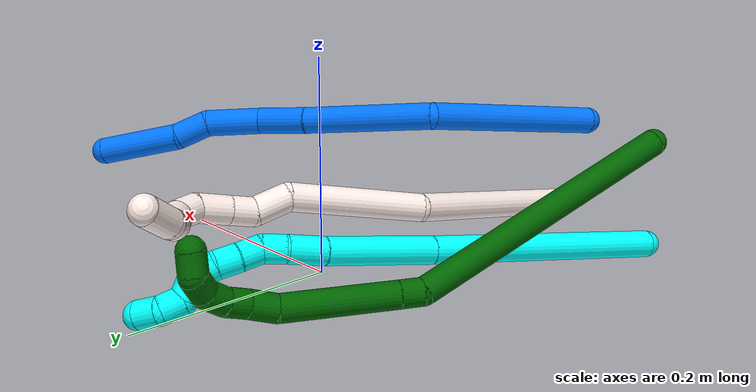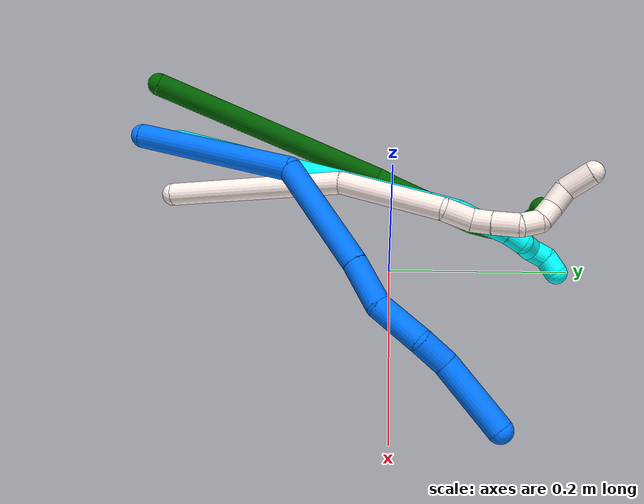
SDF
<sdf version="1.7">
 <world name="default">
  <model name="3">
   <static>0</static>
   <link name="3">
    <collision name="collision-cylinder-e_1_1_4">
     <pose>0.027121 0.092461 -0.059635 -2.14363 0.241683 -0.43848</pose>
     <geometry><cylinder><radius>0.0125</radius><length>0.226637</length></cylinder></geometry>
     <surface>
      <friction><ode><mu>1.16</mu><mu2>1.16</mu2><slip1>0</slip1><slip2>0</slip2></ode></friction>
      <contact><ode><kp>1e+06</kp><kd>1</kd><max_vel>0</max_vel><min_depth>0.001</min_depth></ode></contact>
     </surface>
    </collision>
    <visual name="visual-cylinder-e_1_1_4">
     <pose>0.027121 0.092461 -0.059635 -2.14363 0.241683 -0.43848</pose>
     <geometry><cylinder><radius>0.0125</radius><length>0.226637</length></cylinder></geometry>
     <material><ambient>0.003922 1 0.996078 1</ambient></material>
    </visual>
    <collision name="collision-cylinder-e_2_4_5">
     <pose>0.066819 0.225521 -0.144763 -2.13149 0.25657 -0.458422</pose>
     <geometry><cylinder><radius>0.0125</radius><length>0.099121</length></cylinder></geometry>
     <surface>
      <friction><ode><mu>1.16</mu><mu2>1.16</mu2><slip1>0</slip1><slip2>0</slip2></ode></friction>
      <contact><ode><kp>1e+06</kp><kd>1</kd><max_vel>0</max_vel><min_depth>0.001</min_depth></ode></contact>
     </surface>
    </collision>
    <visual name="visual-cylinder-e_2_4_5">
     <pose>0.066819 0.225521 -0.144763 -2.13149 0.25657 -0.458422</pose>
     <geometry><cylinder><radius>0.0125</radius><length>0.099121</length></cylinder></geometry>
     <material><ambient>0.003922 1 0.996078 1</ambient></material>
    </visual>
    <collision name="collision-cylinder-e_3_5_6">
     <pose>0.084578 0.27975 -0.178401 -2.10943 0.315432 -0.546584</pose>
     <geometry><cylinder><radius>0.0125</radius><length>0.033407</length></cylinder></geometry>
     <surface>
      <friction><ode><mu>1.16</mu><mu2>1.16</mu2><slip1>0</slip1><slip2>0</slip2></ode></friction>
      <contact><ode><kp>1e+06</kp><kd>1</kd><max_vel>0</max_vel><min_depth>0.001</min_depth></ode></contact>
     </surface>
    </collision>
    <visual name="visual-cylinder-e_3_5_6">
     <pose>0.084578 0.27975 -0.178401 -2.10943 0.315432 -0.546584</pose>
     <geometry><cylinder><radius>0.0125</radius><length>0.033407</length></cylinder></geometry>
     <material><ambient>0.003922 1 0.996078 1</ambient></material>
    </visual>
    <collision name="collision-cylinder-e_4_6_7">
     <pose>0.094262 0.300587 -0.192546 -2.2651 0.447669 -0.90439</pose>
     <geometry><cylinder><radius>0.0125</radius><length>0.020802</length></cylinder></geometry>
     <surface>
      <friction><ode><mu>1.16</mu><mu2>1.16</mu2><slip1>0</slip1><slip2>0</slip2></ode></friction>
      <contact><ode><kp>1e+06</kp><kd>1</kd><max_vel>0</max_vel><min_depth>0.001</min_depth></ode></contact>
     </surface>
    </collision>
    <visual name="visual-cylinder-e_4_6_7">
     <pose>0.094262 0.300587 -0.192546 -2.2651 0.447669 -0.90439</pose>
     <geometry><cylinder><radius>0.0125</radius><length>0.020802</length></cylinder></geometry>
     <material><ambient>0.003922 1 0.996078 1</ambient></material>
    </visual>
    <collision name="collision-cylinder-e_5_7_8">
     <pose>0.099321 0.314411 -0.206028 -2.41741 0.055673 -0.146751</pose>
     <geometry><cylinder><radius>0.0125</radius><length>0.020012</length></cylinder></geometry>
     <surface>
      <friction><ode><mu>1.16</mu><mu2>1.16</mu2><slip1>0</slip1><slip2>0</slip2></ode></friction>
      <contact><ode><kp>1e+06</kp><kd>1</kd><max_vel>0</max_vel><min_depth>0.001</min_depth></ode></contact>
     </surface>
    </collision>
    <visual name="visual-cylinder-e_5_7_8">
     <pose>0.099321 0.314411 -0.206028 -2.41741 0.055673 -0.146751</pose>
     <geometry><cylinder><radius>0.0125</radius><length>0.020012</length></cylinder></geometry>
     <material><ambient>0.003922 1 0.996078 1</ambient></material>
    </visual>
    <collision name="collision-cylinder-e_6_8_9">
     <pose>0.101226 0.327421 -0.22109 -2.44094 0.135225 -0.366485</pose>
     <geometry><cylinder><radius>0.0125</radius><length>0.020011</length></cylinder></geometry>
     <surface>
      <friction><ode><mu>1.16</mu><mu2>1.16</mu2><slip1>0</slip1><slip2>0</slip2></ode></friction>
      <contact><ode><kp>1e+06</kp><kd>1</kd><max_vel>0</max_vel><min_depth>0.001</min_depth></ode></contact>
     </surface>
    </collision>
    <visual name="visual-cylinder-e_6_8_9">
     <pose>0.101226 0.327421 -0.22109 -2.44094 0.135225 -0.366485</pose>
     <geometry><cylinder><radius>0.0125</radius><length>0.020011</length></cylinder></geometry>
     <material><ambient>0.003922 1 0.996078 1</ambient></material>
    </visual>
    <collision name="collision-cylinder-e_7_9_10">
     <pose>0.103558 0.338393 -0.237505 -2.66345 0.098452 -0.39889</pose>
     <geometry><cylinder><radius>0.0125</radius><length>0.020002</length></cylinder></geometry>
     <surface>
      <friction><ode><mu>1.16</mu><mu2>1.16</mu2><slip1>0</slip1><slip2>0</slip2></ode></friction>
      <contact><ode><kp>1e+06</kp><kd>1</kd><max_vel>0</max_vel><min_depth>0.001</min_depth></ode></contact>
     </surface>
    </collision>
    <visual name="visual-cylinder-e_7_9_10">
     <pose>0.103558 0.338393 -0.237505 -2.66345 0.098452 -0.39889</pose>
     <geometry><cylinder><radius>0.0125</radius><length>0.020002</length></cylinder></geometry>
     <material><ambient>0.003922 1 0.996078 1</ambient></material>
    </visual>
    <collision name="collision-cylinder-e_8_10_11">
     <pose>0.100326 0.343352 -0.255403 -3.09973 -0.435082 2.95272</pose>
     <geometry><cylinder><radius>0.0125</radius><length>0.020003</length></cylinder></geometry>
     <surface>
      <friction><ode><mu>1.16</mu><mu2>1.16</mu2><slip1>0</slip1><slip2>0</slip2></ode></friction>
      <contact><ode><kp>1e+06</kp><kd>1</kd><max_vel>0</max_vel><min_depth>0.001</min_depth></ode></contact>
     </surface>
    </collision>
    <visual name="visual-cylinder-e_8_10_11">
     <pose>0.100326 0.343352 -0.255403 -3.09973 -0.435082 2.95272</pose>
     <geometry><cylinder><radius>0.0125</radius><length>0.020003</length></cylinder></geometry>
     <material><ambient>0.003922 1 0.996078 1</ambient></material>
    </visual>
    <collision name="collision-cylinder-e_9_11_12">
     <pose>0.097224 0.349244 -0.272734 -2.55358 0.11161 -0.364897</pose>
     <geometry><cylinder><radius>0.0125</radius><length>0.02</length></cylinder></geometry>
     <surface>
      <friction><ode><mu>1.16</mu><mu2>1.16</mu2><slip1>0</slip1><slip2>0</slip2></ode></friction>
      <contact><ode><kp>1e+06</kp><kd>1</kd><max_vel>0</max_vel><min_depth>0.001</min_depth></ode></contact>
     </surface>
    </collision>
    <visual name="visual-cylinder-e_9_11_12">
     <pose>0.097224 0.349244 -0.272734 -2.55358 0.11161 -0.364897</pose>
     <geometry><cylinder><radius>0.0125</radius><length>0.02</length></cylinder></geometry>
     <material><ambient>0.003922 1 0.996078 1</ambient></material>
    </visual>
    <collision name="collision-cylinder-e_10_12_2">
     <pose>0.103957 0.357213 -0.288905 -2.84019 0.59654 -2.22405</pose>
     <geometry><cylinder><radius>0.0125</radius><length>0.020005</length></cylinder></geometry>
     <surface>
      <friction><ode><mu>1.16</mu><mu2>1.16</mu2><slip1>0</slip1><slip2>0</slip2></ode></friction>
      <contact><ode><kp>1e+06</kp><kd>1</kd><max_vel>0</max_vel><min_depth>0.001</min_depth></ode></contact>
     </surface>
    </collision>
    <visual name="visual-cylinder-e_10_12_2">
     <pose>0.103957 0.357213 -0.288905 -2.84019 0.59654 -2.22405</pose>
     <geometry><cylinder><radius>0.0125</radius><length>0.020005</length></cylinder></geometry>
     <material><ambient>0.003922 1 0.996078 1</ambient></material>
    </visual>
    <collision name="collision-sphere-2">
     <pose>0.109576 0.35967 -0.296807 0 -0 0</pose>
     <geometry><sphere><radius>0.0125</radius></sphere></geometry>
     <surface>
      <friction><ode><mu>1.16</mu><mu2>1.16</mu2><slip1>0</slip1><slip2>0</slip2></ode></friction>
      <contact><ode><kp>1e+06</kp><kd>1</kd><max_vel>0</max_vel><min_depth>0.001</min_depth></ode></contact>
     </surface>
    </collision>
    <visual name="visual-sphere-2">
     <pose>0.109576 0.35967 -0.296807 0 -0 0</pose>
     <geometry><sphere><radius>0.0125</radius></sphere></geometry>
     <material><ambient>0.003922 1 0.996078 1</ambient></material>
    </visual>
    <collision name="collision-sphere-12">
     <pose>0.098338 0.354757 -0.281003 0 -0 0</pose>
     <geometry><sphere><radius>0.0125</radius></sphere></geometry>
     <surface>
      <friction><ode><mu>1.16</mu><mu2>1.16</mu2><slip1>0</slip1><slip2>0</slip2></ode></friction>
      <contact><ode><kp>1e+06</kp><kd>1</kd><max_vel>0</max_vel><min_depth>0.001</min_depth></ode></contact>
     </surface>
    </collision>
    <visual name="visual-sphere-12">
     <pose>0.098338 0.354757 -0.281003 0 -0 0</pose>
     <geometry><sphere><radius>0.0125</radius></sphere></geometry>
     <material><ambient>0.003922 1 0.996078 1</ambient></material>
    </visual>
    <collision name="collision-sphere-11">
     <pose>0.09611 0.343732 -0.264465 0 -0 0</pose>
     <geometry><sphere><radius>0.0125</radius></sphere></geometry>
     <surface>
      <friction><ode><mu>1.16</mu><mu2>1.16</mu2><slip1>0</slip1><slip2>0</slip2></ode></friction>
      <contact><ode><kp>1e+06</kp><kd>1</kd><max_vel>0</max_vel><min_depth>0.001</min_depth></ode></contact>
     </surface>
    </collision>
    <visual name="visual-sphere-11">
     <pose>0.09611 0.343732 -0.264465 0 -0 0</pose>
     <geometry><sphere><radius>0.0125</radius></sphere></geometry>
     <material><ambient>0.003922 1 0.996078 1</ambient></material>
    </visual>
    <collision name="collision-sphere-10">
     <pose>0.104541 0.342972 -0.246342 0 -0 0</pose>
     <geometry><sphere><radius>0.0125</radius></sphere></geometry>
     <surface>
      <friction><ode><mu>1.16</mu><mu2>1.16</mu2><slip1>0</slip1><slip2>0</slip2></ode></friction>
      <contact><ode><kp>1e+06</kp><kd>1</kd><max_vel>0</max_vel><min_depth>0.001</min_depth></ode></contact>
     </surface>
    </collision>
    <visual name="visual-sphere-10">
     <pose>0.104541 0.342972 -0.246342 0 -0 0</pose>
     <geometry><sphere><radius>0.0125</radius></sphere></geometry>
     <material><ambient>0.003922 1 0.996078 1</ambient></material>
    </visual>
    <collision name="collision-sphere-9">
     <pose>0.102575 0.333813 -0.228668 0 -0 0</pose>
     <geometry><sphere><radius>0.0125</radius></sphere></geometry>
     <surface>
      <friction><ode><mu>1.16</mu><mu2>1.16</mu2><slip1>0</slip1><slip2>0</slip2></ode></friction>
      <contact><ode><kp>1e+06</kp><kd>1</kd><max_vel>0</max_vel><min_depth>0.001</min_depth></ode></contact>
     </surface>
    </collision>
    <visual name="visual-sphere-9">
     <pose>0.102575 0.333813 -0.228668 0 -0 0</pose>
     <geometry><sphere><radius>0.0125</radius></sphere></geometry>
     <material><ambient>0.003922 1 0.996078 1</ambient></material>
    </visual>
    <collision name="collision-sphere-4">
     <pose>0.054242 0.184923 -0.119271 0 -0 0</pose>
     <geometry><sphere><radius>0.0125</radius></sphere></geometry>
     <surface>
      <friction><ode><mu>1.16</mu><mu2>1.16</mu2><slip1>0</slip1><slip2>0</slip2></ode></friction>
      <contact><ode><kp>1e+06</kp><kd>1</kd><max_vel>0</max_vel><min_depth>0.001</min_depth></ode></contact>
     </surface>
    </collision>
    <visual name="visual-sphere-4">
     <pose>0.054242 0.184923 -0.119271 0 -0 0</pose>
     <geometry><sphere><radius>0.0125</radius></sphere></geometry>
     <material><ambient>0.003922 1 0.996078 1</ambient></material>
    </visual>
    <collision name="collision-sphere-1">
     <geometry><sphere><radius>0.0125</radius></sphere></geometry>
     <surface>
      <friction><ode><mu>1.16</mu><mu2>1.16</mu2><slip1>0</slip1><slip2>0</slip2></ode></friction>
      <contact><ode><kp>1e+06</kp><kd>1</kd><max_vel>0</max_vel><min_depth>0.001</min_depth></ode></contact>
     </surface>
    </collision>
    <visual name="visual-sphere-1">
     <geometry><sphere><radius>0.0125</radius></sphere></geometry>
     <material><ambient>0.003922 1 0.996078 1</ambient></material>
    </visual>
    <collision name="collision-sphere-8">
     <pose>0.099877 0.32103 -0.213511 0 -0 0</pose>
     <geometry><sphere><radius>0.0125</radius></sphere></geometry>
     <surface>
      <friction><ode><mu>1.16</mu><mu2>1.16</mu2><slip1>0</slip1><slip2>0</slip2></ode></friction>
      <contact><ode><kp>1e+06</kp><kd>1</kd><max_vel>0</max_vel><min_depth>0.001</min_depth></ode></contact>
     </surface>
    </collision>
    <visual name="visual-sphere-8">
     <pose>0.099877 0.32103 -0.213511 0 -0 0</pose>
     <geometry><sphere><radius>0.0125</radius></sphere></geometry>
     <material><ambient>0.003922 1 0.996078 1</ambient></material>
    </visual>
    <collision name="collision-sphere-5">
     <pose>0.079396 0.266119 -0.170255 0 -0 0</pose>
     <geometry><sphere><radius>0.0125</radius></sphere></geometry>
     <surface>
      <friction><ode><mu>1.16</mu><mu2>1.16</mu2><slip1>0</slip1><slip2>0</slip2></ode></friction>
      <contact><ode><kp>1e+06</kp><kd>1</kd><max_vel>0</max_vel><min_depth>0.001</min_depth></ode></contact>
     </surface>
    </collision>
    <visual name="visual-sphere-5">
     <pose>0.079396 0.266119 -0.170255 0 -0 0</pose>
     <geometry><sphere><radius>0.0125</radius></sphere></geometry>
     <material><ambient>0.003922 1 0.996078 1</ambient></material>
    </visual>
    <collision name="collision-sphere-6">
     <pose>0.08976 0.293381 -0.186547 0 -0 0</pose>
     <geometry><sphere><radius>0.0125</radius></sphere></geometry>
     <surface>
      <friction><ode><mu>1.16</mu><mu2>1.16</mu2><slip1>0</slip1><slip2>0</slip2></ode></friction>
      <contact><ode><kp>1e+06</kp><kd>1</kd><max_vel>0</max_vel><min_depth>0.001</min_depth></ode></contact>
     </surface>
    </collision>
    <visual name="visual-sphere-6">
     <pose>0.08976 0.293381 -0.186547 0 -0 0</pose>
     <geometry><sphere><radius>0.0125</radius></sphere></geometry>
     <material><ambient>0.003922 1 0.996078 1</ambient></material>
    </visual>
    <collision name="collision-sphere-7">
     <pose>0.098764 0.307792 -0.198545 0 -0 0</pose>
     <geometry><sphere><radius>0.0125</radius></sphere></geometry>
     <surface>
      <friction><ode><mu>1.16</mu><mu2>1.16</mu2><slip1>0</slip1><slip2>0</slip2></ode></friction>
      <contact><ode><kp>1e+06</kp><kd>1</kd><max_vel>0</max_vel><min_depth>0.001</min_depth></ode></contact>
     </surface>
    </collision>
    <visual name="visual-sphere-7">
     <pose>0.098764 0.307792 -0.198545 0 -0 0</pose>
     <geometry><sphere><radius>0.0125</radius></sphere></geometry>
     <material><ambient>0.003922 1 0.996078 1</ambient></material>
    </visual>
    <inertial>
     <pose>0.059344 0.199038 -0.134942 0 -0 0</pose>
     <mass>0.5</mass>
     <inertia>
      <ixx>0.000505</ixx>
      <ixy>0</ixy>
      <ixz>0</ixz>
      <iyy>-0.00085</iyy>
      <iyz>0</iyz>
      <izz>-0.001159</izz>
     </inertia>
    </inertial>
   </link>
   <pose>-0.173647 -0.258258 0.011508 0.604984 -0.346524 -0.140121</pose>
  </model>
  <model name="6">
   <static>0</static>
   <link name="6">
    <collision name="collision-cylinder-e_1_1_4">
     <pose>0.061625 0.099304 -0.066845 -2.16326 0.475417 -0.854277</pose>
     <geometry><cylinder><radius>0.0125</radius><length>0.269275</length></cylinder></geometry>
     <surface>
      <friction><ode><mu>1.16</mu><mu2>1.16</mu2><slip1>0</slip1><slip2>0</slip2></ode></friction>
      <contact><ode><kp>1e+06</kp><kd>1</kd><max_vel>0</max_vel><min_depth>0.001</min_depth></ode></contact>
     </surface>
    </collision>
    <visual name="visual-cylinder-e_1_1_4">
     <pose>0.061625 0.099304 -0.066845 -2.16326 0.475417 -0.854277</pose>
     <geometry><cylinder><radius>0.0125</radius><length>0.269275</length></cylinder></geometry>
     <material><ambient>0 0.392157 0.003922 1</ambient></material>
    </visual>
    <collision name="collision-cylinder-e_2_4_5">
     <pose>0.124412 0.208407 -0.136911 -1.88835 0.112263 -0.154923</pose>
     <geometry><cylinder><radius>0.0125</radius><length>0.02076</length></cylinder></geometry>
     <surface>
      <friction><ode><mu>1.16</mu><mu2>1.16</mu2><slip1>0</slip1><slip2>0</slip2></ode></friction>
      <contact><ode><kp>1e+06</kp><kd>1</kd><max_vel>0</max_vel><min_depth>0.001</min_depth></ode></contact>
     </surface>
    </collision>
    <visual name="visual-cylinder-e_2_4_5">
     <pose>0.124412 0.208407 -0.136911 -1.88835 0.112263 -0.154923</pose>
     <geometry><cylinder><radius>0.0125</radius><length>0.02076</length></cylinder></geometry>
     <material><ambient>0 0.392157 0.003922 1</ambient></material>
    </visual>
    <collision name="collision-cylinder-e_3_5_6">
     <pose>0.130229 0.26613 -0.15859 -1.93843 0.090365 -0.131539</pose>
     <geometry><cylinder><radius>0.0125</radius><length>0.103131</length></cylinder></geometry>
     <surface>
      <friction><ode><mu>1.16</mu><mu2>1.16</mu2><slip1>0</slip1><slip2>0</slip2></ode></friction>
      <contact><ode><kp>1e+06</kp><kd>1</kd><max_vel>0</max_vel><min_depth>0.001</min_depth></ode></contact>
     </surface>
    </collision>
    <visual name="visual-cylinder-e_3_5_6">
     <pose>0.130229 0.26613 -0.15859 -1.93843 0.090365 -0.131539</pose>
     <geometry><cylinder><radius>0.0125</radius><length>0.103131</length></cylinder></geometry>
     <material><ambient>0 0.392157 0.003922 1</ambient></material>
    </visual>
    <collision name="collision-cylinder-e_4_6_7">
     <pose>0.132425 0.325406 -0.182297 -2.00391 -0.193923 0.30196</pose>
     <geometry><cylinder><radius>0.0125</radius><length>0.025494</length></cylinder></geometry>
     <surface>
      <friction><ode><mu>1.16</mu><mu2>1.16</mu2><slip1>0</slip1><slip2>0</slip2></ode></friction>
      <contact><ode><kp>1e+06</kp><kd>1</kd><max_vel>0</max_vel><min_depth>0.001</min_depth></ode></contact>
     </surface>
    </collision>
    <visual name="visual-cylinder-e_4_6_7">
     <pose>0.132425 0.325406 -0.182297 -2.00391 -0.193923 0.30196</pose>
     <geometry><cylinder><radius>0.0125</radius><length>0.025494</length></cylinder></geometry>
     <material><ambient>0 0.392157 0.003922 1</ambient></material>
    </visual>
    <collision name="collision-cylinder-e_5_7_8">
     <pose>0.128073 0.344513 -0.193688 -2.24072 -0.189402 0.387894</pose>
     <geometry><cylinder><radius>0.0125</radius><length>0.020142</length></cylinder></geometry>
     <surface>
      <friction><ode><mu>1.16</mu><mu2>1.16</mu2><slip1>0</slip1><slip2>0</slip2></ode></friction>
      <contact><ode><kp>1e+06</kp><kd>1</kd><max_vel>0</max_vel><min_depth>0.001</min_depth></ode></contact>
     </surface>
    </collision>
    <visual name="visual-cylinder-e_5_7_8">
     <pose>0.128073 0.344513 -0.193688 -2.24072 -0.189402 0.387894</pose>
     <geometry><cylinder><radius>0.0125</radius><length>0.020142</length></cylinder></geometry>
     <material><ambient>0 0.392157 0.003922 1</ambient></material>
    </visual>
    <collision name="collision-cylinder-e_6_8_9">
     <pose>0.121507 0.358731 -0.206496 -2.37154 -0.465949 1.0594</pose>
     <geometry><cylinder><radius>0.0125</radius><length>0.020789</length></cylinder></geometry>
     <surface>
      <friction><ode><mu>1.16</mu><mu2>1.16</mu2><slip1>0</slip1><slip2>0</slip2></ode></friction>
      <contact><ode><kp>1e+06</kp><kd>1</kd><max_vel>0</max_vel><min_depth>0.001</min_depth></ode></contact>
     </surface>
    </collision>
    <visual name="visual-cylinder-e_6_8_9">
     <pose>0.121507 0.358731 -0.206496 -2.37154 -0.465949 1.0594</pose>
     <geometry><cylinder><radius>0.0125</radius><length>0.020789</length></cylinder></geometry>
     <material><ambient>0 0.392157 0.003922 1</ambient></material>
    </visual>
    <collision name="collision-cylinder-e_7_9_10">
     <pose>0.10906 0.368233 -0.218801 -2.64745 -0.881817 2.15986</pose>
     <geometry><cylinder><radius>0.0125</radius><length>0.02015</length></cylinder></geometry>
     <surface>
      <friction><ode><mu>1.16</mu><mu2>1.16</mu2><slip1>0</slip1><slip2>0</slip2></ode></friction>
      <contact><ode><kp>1e+06</kp><kd>1</kd><max_vel>0</max_vel><min_depth>0.001</min_depth></ode></contact>
     </surface>
    </collision>
    <visual name="visual-cylinder-e_7_9_10">
     <pose>0.10906 0.368233 -0.218801 -2.64745 -0.881817 2.15986</pose>
     <geometry><cylinder><radius>0.0125</radius><length>0.02015</length></cylinder></geometry>
     <material><ambient>0 0.392157 0.003922 1</ambient></material>
    </visual>
    <collision name="collision-cylinder-e_8_10_2">
     <pose>0.091272 0.372703 -0.223866 -1.18959 -1.41789 1.05154</pose>
     <geometry><cylinder><radius>0.0125</radius><length>0.02026</length></cylinder></geometry>
     <surface>
      <friction><ode><mu>1.16</mu><mu2>1.16</mu2><slip1>0</slip1><slip2>0</slip2></ode></friction>
      <contact><ode><kp>1e+06</kp><kd>1</kd><max_vel>0</max_vel><min_depth>0.001</min_depth></ode></contact>
     </surface>
    </collision>
    <visual name="visual-cylinder-e_8_10_2">
     <pose>0.091272 0.372703 -0.223866 -1.18959 -1.41789 1.05154</pose>
     <geometry><cylinder><radius>0.0125</radius><length>0.02026</length></cylinder></geometry>
     <material><ambient>0 0.392157 0.003922 1</ambient></material>
    </visual>
    <collision name="collision-sphere-2">
     <pose>0.08126 0.374136 -0.223292 0 -0 0</pose>
     <geometry><sphere><radius>0.0125</radius></sphere></geometry>
     <surface>
      <friction><ode><mu>1.16</mu><mu2>1.16</mu2><slip1>0</slip1><slip2>0</slip2></ode></friction>
      <contact><ode><kp>1e+06</kp><kd>1</kd><max_vel>0</max_vel><min_depth>0.001</min_depth></ode></contact>
     </surface>
    </collision>
    <visual name="visual-sphere-2">
     <pose>0.08126 0.374136 -0.223292 0 -0 0</pose>
     <geometry><sphere><radius>0.0125</radius></sphere></geometry>
     <material><ambient>0 0.392157 0.003922 1</ambient></material>
    </visual>
    <collision name="collision-sphere-10">
     <pose>0.101284 0.371271 -0.22444 0 -0 0</pose>
     <geometry><sphere><radius>0.0125</radius></sphere></geometry>
     <surface>
      <friction><ode><mu>1.16</mu><mu2>1.16</mu2><slip1>0</slip1><slip2>0</slip2></ode></friction>
      <contact><ode><kp>1e+06</kp><kd>1</kd><max_vel>0</max_vel><min_depth>0.001</min_depth></ode></contact>
     </surface>
    </collision>
    <visual name="visual-sphere-10">
     <pose>0.101284 0.371271 -0.22444 0 -0 0</pose>
     <geometry><sphere><radius>0.0125</radius></sphere></geometry>
     <material><ambient>0 0.392157 0.003922 1</ambient></material>
    </visual>
    <collision name="collision-sphere-9">
     <pose>0.116837 0.365195 -0.213162 0 -0 0</pose>
     <geometry><sphere><radius>0.0125</radius></sphere></geometry>
     <surface>
      <friction><ode><mu>1.16</mu><mu2>1.16</mu2><slip1>0</slip1><slip2>0</slip2></ode></friction>
      <contact><ode><kp>1e+06</kp><kd>1</kd><max_vel>0</max_vel><min_depth>0.001</min_depth></ode></contact>
     </surface>
    </collision>
    <visual name="visual-sphere-9">
     <pose>0.116837 0.365195 -0.213162 0 -0 0</pose>
     <geometry><sphere><radius>0.0125</radius></sphere></geometry>
     <material><ambient>0 0.392157 0.003922 1</ambient></material>
    </visual>
    <collision name="collision-sphere-4">
     <pose>0.123249 0.198608 -0.133691 0 -0 0</pose>
     <geometry><sphere><radius>0.0125</radius></sphere></geometry>
     <surface>
      <friction><ode><mu>1.16</mu><mu2>1.16</mu2><slip1>0</slip1><slip2>0</slip2></ode></friction>
      <contact><ode><kp>1e+06</kp><kd>1</kd><max_vel>0</max_vel><min_depth>0.001</min_depth></ode></contact>
     </surface>
    </collision>
    <visual name="visual-sphere-4">
     <pose>0.123249 0.198608 -0.133691 0 -0 0</pose>
     <geometry><sphere><radius>0.0125</radius></sphere></geometry>
     <material><ambient>0 0.392157 0.003922 1</ambient></material>
    </visual>
    <collision name="collision-sphere-1">
     <geometry><sphere><radius>0.0125</radius></sphere></geometry>
     <surface>
      <friction><ode><mu>1.16</mu><mu2>1.16</mu2><slip1>0</slip1><slip2>0</slip2></ode></friction>
      <contact><ode><kp>1e+06</kp><kd>1</kd><max_vel>0</max_vel><min_depth>0.001</min_depth></ode></contact>
     </surface>
    </collision>
    <visual name="visual-sphere-1">
     <geometry><sphere><radius>0.0125</radius></sphere></geometry>
     <material><ambient>0 0.392157 0.003922 1</ambient></material>
    </visual>
    <collision name="collision-sphere-8">
     <pose>0.126177 0.352266 -0.199829 0 -0 0</pose>
     <geometry><sphere><radius>0.0125</radius></sphere></geometry>
     <surface>
      <friction><ode><mu>1.16</mu><mu2>1.16</mu2><slip1>0</slip1><slip2>0</slip2></ode></friction>
      <contact><ode><kp>1e+06</kp><kd>1</kd><max_vel>0</max_vel><min_depth>0.001</min_depth></ode></contact>
     </surface>
    </collision>
    <visual name="visual-sphere-8">
     <pose>0.126177 0.352266 -0.199829 0 -0 0</pose>
     <geometry><sphere><radius>0.0125</radius></sphere></geometry>
     <material><ambient>0 0.392157 0.003922 1</ambient></material>
    </visual>
    <collision name="collision-sphere-5">
     <pose>0.125575 0.218206 -0.140132 0 -0 0</pose>
     <geometry><sphere><radius>0.0125</radius></sphere></geometry>
     <surface>
      <friction><ode><mu>1.16</mu><mu2>1.16</mu2><slip1>0</slip1><slip2>0</slip2></ode></friction>
      <contact><ode><kp>1e+06</kp><kd>1</kd><max_vel>0</max_vel><min_depth>0.001</min_depth></ode></contact>
     </surface>
    </collision>
    <visual name="visual-sphere-5">
     <pose>0.125575 0.218206 -0.140132 0 -0 0</pose>
     <geometry><sphere><radius>0.0125</radius></sphere></geometry>
     <material><ambient>0 0.392157 0.003922 1</ambient></material>
    </visual>
    <collision name="collision-sphere-6">
     <pose>0.134882 0.314053 -0.177047 0 -0 0</pose>
     <geometry><sphere><radius>0.0125</radius></sphere></geometry>
     <surface>
      <friction><ode><mu>1.16</mu><mu2>1.16</mu2><slip1>0</slip1><slip2>0</slip2></ode></friction>
      <contact><ode><kp>1e+06</kp><kd>1</kd><max_vel>0</max_vel><min_depth>0.001</min_depth></ode></contact>
     </surface>
    </collision>
    <visual name="visual-sphere-6">
     <pose>0.134882 0.314053 -0.177047 0 -0 0</pose>
     <geometry><sphere><radius>0.0125</radius></sphere></geometry>
     <material><ambient>0 0.392157 0.003922 1</ambient></material>
    </visual>
    <collision name="collision-sphere-7">
     <pose>0.129969 0.33676 -0.187546 0 -0 0</pose>
     <geometry><sphere><radius>0.0125</radius></sphere></geometry>
     <surface>
      <friction><ode><mu>1.16</mu><mu2>1.16</mu2><slip1>0</slip1><slip2>0</slip2></ode></friction>
      <contact><ode><kp>1e+06</kp><kd>1</kd><max_vel>0</max_vel><min_depth>0.001</min_depth></ode></contact>
     </surface>
    </collision>
    <visual name="visual-sphere-7">
     <pose>0.129969 0.33676 -0.187546 0 -0 0</pose>
     <geometry><sphere><radius>0.0125</radius></sphere></geometry>
     <material><ambient>0 0.392157 0.003922 1</ambient></material>
    </visual>
    <inertial>
     <pose>0.090271 0.192352 -0.117967 0 -0 0</pose>
     <mass>0.5</mass>
     <inertia>
      <ixx>-4.5e-05</ixx>
      <ixy>0</ixy>
      <ixz>0</ixz>
      <iyy>-0.001242</iyy>
      <iyz>0</iyz>
      <izz>-0.002075</izz>
     </inertia>
    </inertial>
   </link>
   <pose>-0.172916 -0.259023 0.111437 2.99782 1.41863 2.1334</pose>
  </model>
  <model name="11">
   <static>0</static>
   <link name="11">
    <collision name="collision-cylinder-e_1_1_4">
     <pose>0.008237 0.083383 0.050917 -1.02259 0.084109 -0.04721</pose>
     <geometry><cylinder><radius>0.0125</radius><length>0.196093</length></cylinder></geometry>
     <surface>
      <friction><ode><mu>1.16</mu><mu2>1.16</mu2><slip1>0</slip1><slip2>0</slip2></ode></friction>
      <contact><ode><kp>1e+06</kp><kd>1</kd><max_vel>0</max_vel><min_depth>0.001</min_depth></ode></contact>
     </surface>
    </collision>
    <visual name="visual-cylinder-e_1_1_4">
     <pose>0.008237 0.083383 0.050917 -1.02259 0.084109 -0.04721</pose>
     <geometry><cylinder><radius>0.0125</radius><length>0.196093</length></cylinder></geometry>
     <material><ambient>1 0.933333 0.909804 1</ambient></material>
    </visual>
    <collision name="collision-cylinder-e_2_4_5">
     <pose>0.036549 0.222361 0.116623 -1.31079 0.335759 -0.259109</pose>
     <geometry><cylinder><radius>0.0125</radius><length>0.121859</length></cylinder></geometry>
     <surface>
      <friction><ode><mu>1.16</mu><mu2>1.16</mu2><slip1>0</slip1><slip2>0</slip2></ode></friction>
      <contact><ode><kp>1e+06</kp><kd>1</kd><max_vel>0</max_vel><min_depth>0.001</min_depth></ode></contact>
     </surface>
    </collision>
    <visual name="visual-cylinder-e_2_4_5">
     <pose>0.036549 0.222361 0.116623 -1.31079 0.335759 -0.259109</pose>
     <geometry><cylinder><radius>0.0125</radius><length>0.121859</length></cylinder></geometry>
     <material><ambient>1 0.933333 0.909804 1</ambient></material>
    </visual>
    <collision name="collision-cylinder-e_3_5_6">
     <pose>0.054729 0.293906 0.132895 -1.47808 -0.117826 0.1074</pose>
     <geometry><cylinder><radius>0.0125</radius><length>0.032263</length></cylinder></geometry>
     <surface>
      <friction><ode><mu>1.16</mu><mu2>1.16</mu2><slip1>0</slip1><slip2>0</slip2></ode></friction>
      <contact><ode><kp>1e+06</kp><kd>1</kd><max_vel>0</max_vel><min_depth>0.001</min_depth></ode></contact>
     </surface>
    </collision>
    <visual name="visual-cylinder-e_3_5_6">
     <pose>0.054729 0.293906 0.132895 -1.47808 -0.117826 0.1074</pose>
     <geometry><cylinder><radius>0.0125</radius><length>0.032263</length></cylinder></geometry>
     <material><ambient>1 0.933333 0.909804 1</ambient></material>
    </visual>
    <collision name="collision-cylinder-e_4_6_7">
     <pose>0.055872 0.319783 0.138276 -1.19661 0.277722 -0.189962</pose>
     <geometry><cylinder><radius>0.0125</radius><length>0.022178</length></cylinder></geometry>
     <surface>
      <friction><ode><mu>1.16</mu><mu2>1.16</mu2><slip1>0</slip1><slip2>0</slip2></ode></friction>
      <contact><ode><kp>1e+06</kp><kd>1</kd><max_vel>0</max_vel><min_depth>0.001</min_depth></ode></contact>
     </surface>
    </collision>
    <visual name="visual-cylinder-e_4_6_7">
     <pose>0.055872 0.319783 0.138276 -1.19661 0.277722 -0.189962</pose>
     <geometry><cylinder><radius>0.0125</radius><length>0.022178</length></cylinder></geometry>
     <material><ambient>1 0.933333 0.909804 1</ambient></material>
    </visual>
    <collision name="collision-cylinder-e_5_7_8">
     <pose>0.062586 0.342558 0.148026 -1.14343 0.254503 -0.164264</pose>
     <geometry><cylinder><radius>0.0125</radius><length>0.029178</length></cylinder></geometry>
     <surface>
      <friction><ode><mu>1.16</mu><mu2>1.16</mu2><slip1>0</slip1><slip2>0</slip2></ode></friction>
      <contact><ode><kp>1e+06</kp><kd>1</kd><max_vel>0</max_vel><min_depth>0.001</min_depth></ode></contact>
     </surface>
    </collision>
    <visual name="visual-cylinder-e_5_7_8">
     <pose>0.062586 0.342558 0.148026 -1.14343 0.254503 -0.164264</pose>
     <geometry><cylinder><radius>0.0125</radius><length>0.029178</length></cylinder></geometry>
     <material><ambient>1 0.933333 0.909804 1</ambient></material>
    </visual>
    <collision name="collision-cylinder-e_6_8_9">
     <pose>0.063683 0.363528 0.160024 -0.922965 -0.247713 0.123663</pose>
     <geometry><cylinder><radius>0.0125</radius><length>0.021009</length></cylinder></geometry>
     <surface>
      <friction><ode><mu>1.16</mu><mu2>1.16</mu2><slip1>0</slip1><slip2>0</slip2></ode></friction>
      <contact><ode><kp>1e+06</kp><kd>1</kd><max_vel>0</max_vel><min_depth>0.001</min_depth></ode></contact>
     </surface>
    </collision>
    <visual name="visual-cylinder-e_6_8_9">
     <pose>0.063683 0.363528 0.160024 -0.922965 -0.247713 0.123663</pose>
     <geometry><cylinder><radius>0.0125</radius><length>0.021009</length></cylinder></geometry>
     <material><ambient>1 0.933333 0.909804 1</ambient></material>
    </visual>
    <collision name="collision-cylinder-e_7_9_10">
     <pose>0.055002 0.374532 0.174877 -0.319785 -0.587212 0.09744</pose>
     <geometry><cylinder><radius>0.0125</radius><length>0.022038</length></cylinder></geometry>
     <surface>
      <friction><ode><mu>1.16</mu><mu2>1.16</mu2><slip1>0</slip1><slip2>0</slip2></ode></friction>
      <contact><ode><kp>1e+06</kp><kd>1</kd><max_vel>0</max_vel><min_depth>0.001</min_depth></ode></contact>
     </surface>
    </collision>
    <visual name="visual-cylinder-e_7_9_10">
     <pose>0.055002 0.374532 0.174877 -0.319785 -0.587212 0.09744</pose>
     <geometry><cylinder><radius>0.0125</radius><length>0.022038</length></cylinder></geometry>
     <material><ambient>1 0.933333 0.909804 1</ambient></material>
    </visual>
    <collision name="collision-cylinder-e_8_10_11">
     <pose>0.046462 0.379355 0.194631 -0.173787 -0.213874 0.018702</pose>
     <geometry><cylinder><radius>0.0125</radius><length>0.022952</length></cylinder></geometry>
     <surface>
      <friction><ode><mu>1.16</mu><mu2>1.16</mu2><slip1>0</slip1><slip2>0</slip2></ode></friction>
      <contact><ode><kp>1e+06</kp><kd>1</kd><max_vel>0</max_vel><min_depth>0.001</min_depth></ode></contact>
     </surface>
    </collision>
    <visual name="visual-cylinder-e_8_10_11">
     <pose>0.046462 0.379355 0.194631 -0.173787 -0.213874 0.018702</pose>
     <geometry><cylinder><radius>0.0125</radius><length>0.022952</length></cylinder></geometry>
     <material><ambient>1 0.933333 0.909804 1</ambient></material>
    </visual>
    <collision name="collision-cylinder-e_9_11_2">
     <pose>0.047259 0.388818 0.219671 -0.493296 0.20077 -0.050708</pose>
     <geometry><cylinder><radius>0.0125</radius><length>0.03243</length></cylinder></geometry>
     <surface>
      <friction><ode><mu>1.16</mu><mu2>1.16</mu2><slip1>0</slip1><slip2>0</slip2></ode></friction>
      <contact><ode><kp>1e+06</kp><kd>1</kd><max_vel>0</max_vel><min_depth>0.001</min_depth></ode></contact>
     </surface>
    </collision>
    <visual name="visual-cylinder-e_9_11_2">
     <pose>0.047259 0.388818 0.219671 -0.493296 0.20077 -0.050708</pose>
     <geometry><cylinder><radius>0.0125</radius><length>0.03243</length></cylinder></geometry>
     <material><ambient>1 0.933333 0.909804 1</ambient></material>
    </visual>
    <collision name="collision-sphere-2">
     <pose>0.050493 0.396342 0.233666 0 -0 0</pose>
     <geometry><sphere><radius>0.0125</radius></sphere></geometry>
     <surface>
      <friction><ode><mu>1.16</mu><mu2>1.16</mu2><slip1>0</slip1><slip2>0</slip2></ode></friction>
      <contact><ode><kp>1e+06</kp><kd>1</kd><max_vel>0</max_vel><min_depth>0.001</min_depth></ode></contact>
     </surface>
    </collision>
    <visual name="visual-sphere-2">
     <pose>0.050493 0.396342 0.233666 0 -0 0</pose>
     <geometry><sphere><radius>0.0125</radius></sphere></geometry>
     <material><ambient>1 0.933333 0.909804 1</ambient></material>
    </visual>
    <collision name="collision-sphere-11">
     <pose>0.044026 0.381294 0.205676 0 -0 0</pose>
     <geometry><sphere><radius>0.0125</radius></sphere></geometry>
     <surface>
      <friction><ode><mu>1.16</mu><mu2>1.16</mu2><slip1>0</slip1><slip2>0</slip2></ode></friction>
      <contact><ode><kp>1e+06</kp><kd>1</kd><max_vel>0</max_vel><min_depth>0.001</min_depth></ode></contact>
     </surface>
    </collision>
    <visual name="visual-sphere-11">
     <pose>0.044026 0.381294 0.205676 0 -0 0</pose>
     <geometry><sphere><radius>0.0125</radius></sphere></geometry>
     <material><ambient>1 0.933333 0.909804 1</ambient></material>
    </visual>
    <collision name="collision-sphere-10">
     <pose>0.048897 0.377416 0.183586 0 -0 0</pose>
     <geometry><sphere><radius>0.0125</radius></sphere></geometry>
     <surface>
      <friction><ode><mu>1.16</mu><mu2>1.16</mu2><slip1>0</slip1><slip2>0</slip2></ode></friction>
      <contact><ode><kp>1e+06</kp><kd>1</kd><max_vel>0</max_vel><min_depth>0.001</min_depth></ode></contact>
     </surface>
    </collision>
    <visual name="visual-sphere-10">
     <pose>0.048897 0.377416 0.183586 0 -0 0</pose>
     <geometry><sphere><radius>0.0125</radius></sphere></geometry>
     <material><ambient>1 0.933333 0.909804 1</ambient></material>
    </visual>
    <collision name="collision-sphere-9">
     <pose>0.061107 0.371648 0.166169 0 -0 0</pose>
     <geometry><sphere><radius>0.0125</radius></sphere></geometry>
     <surface>
      <friction><ode><mu>1.16</mu><mu2>1.16</mu2><slip1>0</slip1><slip2>0</slip2></ode></friction>
      <contact><ode><kp>1e+06</kp><kd>1</kd><max_vel>0</max_vel><min_depth>0.001</min_depth></ode></contact>
     </surface>
    </collision>
    <visual name="visual-sphere-9">
     <pose>0.061107 0.371648 0.166169 0 -0 0</pose>
     <geometry><sphere><radius>0.0125</radius></sphere></geometry>
     <material><ambient>1 0.933333 0.909804 1</ambient></material>
    </visual>
    <collision name="collision-sphere-4">
     <pose>0.016474 0.166767 0.101833 0 -0 0</pose>
     <geometry><sphere><radius>0.0125</radius></sphere></geometry>
     <surface>
      <friction><ode><mu>1.16</mu><mu2>1.16</mu2><slip1>0</slip1><slip2>0</slip2></ode></friction>
      <contact><ode><kp>1e+06</kp><kd>1</kd><max_vel>0</max_vel><min_depth>0.001</min_depth></ode></contact>
     </surface>
    </collision>
    <visual name="visual-sphere-4">
     <pose>0.016474 0.166767 0.101833 0 -0 0</pose>
     <geometry><sphere><radius>0.0125</radius></sphere></geometry>
     <material><ambient>1 0.933333 0.909804 1</ambient></material>
    </visual>
    <collision name="collision-sphere-1">
     <geometry><sphere><radius>0.0125</radius></sphere></geometry>
     <surface>
      <friction><ode><mu>1.16</mu><mu2>1.16</mu2><slip1>0</slip1><slip2>0</slip2></ode></friction>
      <contact><ode><kp>1e+06</kp><kd>1</kd><max_vel>0</max_vel><min_depth>0.001</min_depth></ode></contact>
     </surface>
    </collision>
    <visual name="visual-sphere-1">
     <geometry><sphere><radius>0.0125</radius></sphere></geometry>
     <material><ambient>1 0.933333 0.909804 1</ambient></material>
    </visual>
    <collision name="collision-sphere-8">
     <pose>0.066258 0.355407 0.153878 0 -0 0</pose>
     <geometry><sphere><radius>0.0125</radius></sphere></geometry>
     <surface>
      <friction><ode><mu>1.16</mu><mu2>1.16</mu2><slip1>0</slip1><slip2>0</slip2></ode></friction>
      <contact><ode><kp>1e+06</kp><kd>1</kd><max_vel>0</max_vel><min_depth>0.001</min_depth></ode></contact>
     </surface>
    </collision>
    <visual name="visual-sphere-8">
     <pose>0.066258 0.355407 0.153878 0 -0 0</pose>
     <geometry><sphere><radius>0.0125</radius></sphere></geometry>
     <material><ambient>1 0.933333 0.909804 1</ambient></material>
    </visual>
    <collision name="collision-sphere-5">
     <pose>0.056625 0.277955 0.131412 0 -0 0</pose>
     <geometry><sphere><radius>0.0125</radius></sphere></geometry>
     <surface>
      <friction><ode><mu>1.16</mu><mu2>1.16</mu2><slip1>0</slip1><slip2>0</slip2></ode></friction>
      <contact><ode><kp>1e+06</kp><kd>1</kd><max_vel>0</max_vel><min_depth>0.001</min_depth></ode></contact>
     </surface>
    </collision>
    <visual name="visual-sphere-5">
     <pose>0.056625 0.277955 0.131412 0 -0 0</pose>
     <geometry><sphere><radius>0.0125</radius></sphere></geometry>
     <material><ambient>1 0.933333 0.909804 1</ambient></material>
    </visual>
    <collision name="collision-sphere-6">
     <pose>0.052832 0.309857 0.134379 0 -0 0</pose>
     <geometry><sphere><radius>0.0125</radius></sphere></geometry>
     <surface>
      <friction><ode><mu>1.16</mu><mu2>1.16</mu2><slip1>0</slip1><slip2>0</slip2></ode></friction>
      <contact><ode><kp>1e+06</kp><kd>1</kd><max_vel>0</max_vel><min_depth>0.001</min_depth></ode></contact>
     </surface>
    </collision>
    <visual name="visual-sphere-6">
     <pose>0.052832 0.309857 0.134379 0 -0 0</pose>
     <geometry><sphere><radius>0.0125</radius></sphere></geometry>
     <material><ambient>1 0.933333 0.909804 1</ambient></material>
    </visual>
    <collision name="collision-sphere-7">
     <pose>0.058913 0.329709 0.142174 0 -0 0</pose>
     <geometry><sphere><radius>0.0125</radius></sphere></geometry>
     <surface>
      <friction><ode><mu>1.16</mu><mu2>1.16</mu2><slip1>0</slip1><slip2>0</slip2></ode></friction>
      <contact><ode><kp>1e+06</kp><kd>1</kd><max_vel>0</max_vel><min_depth>0.001</min_depth></ode></contact>
     </surface>
    </collision>
    <visual name="visual-sphere-7">
     <pose>0.058913 0.329709 0.142174 0 -0 0</pose>
     <geometry><sphere><radius>0.0125</radius></sphere></geometry>
     <material><ambient>1 0.933333 0.909804 1</ambient></material>
    </visual>
    <inertial>
     <pose>0.032098 0.214449 0.109352 0 -0 0</pose>
     <mass>0.5</mass>
     <inertia>
      <ixx>0.000729</ixx>
      <ixy>0</ixy>
      <ixz>0</ixz>
      <iyy>0.000359</iyy>
      <iyz>0</iyz>
      <izz>-0.000781</izz>
     </inertia>
    </inertial>
   </link>
   <pose>-0.07805 -0.247459 0.034014 -0.373531 -0.871653 -0.108759</pose>
  </model>
  <model name="14">
   <static>0</static>
   <link name="14">
    <collision name="collision-cylinder-e_1_1_4">
     <pose>0.009256 0.080113 0.029259 -1.22063 0.108108 -0.075647</pose>
     <geometry><cylinder><radius>0.0125</radius><length>0.171579</length></cylinder></geometry>
     <surface>
      <friction><ode><mu>1.16</mu><mu2>1.16</mu2><slip1>0</slip1><slip2>0</slip2></ode></friction>
      <contact><ode><kp>1e+06</kp><kd>1</kd><max_vel>0</max_vel><min_depth>0.001</min_depth></ode></contact>
     </surface>
    </collision>
    <visual name="visual-cylinder-e_1_1_4">
     <pose>0.009256 0.080113 0.029259 -1.22063 0.108108 -0.075647</pose>
     <geometry><cylinder><radius>0.0125</radius><length>0.171579</length></cylinder></geometry>
     <material><ambient>0 0.462745 1 1</ambient></material>
    </visual>
    <collision name="collision-cylinder-e_2_4_5">
     <pose>0.060339 0.197134 0.082809 -0.988695 0.757992 -0.422884</pose>
     <geometry><cylinder><radius>0.0125</radius><length>0.121683</length></cylinder></geometry>
     <surface>
      <friction><ode><mu>1.16</mu><mu2>1.16</mu2><slip1>0</slip1><slip2>0</slip2></ode></friction>
      <contact><ode><kp>1e+06</kp><kd>1</kd><max_vel>0</max_vel><min_depth>0.001</min_depth></ode></contact>
     </surface>
    </collision>
    <visual name="visual-cylinder-e_2_4_5">
     <pose>0.060339 0.197134 0.082809 -0.988695 0.757992 -0.422884</pose>
     <geometry><cylinder><radius>0.0125</radius><length>0.121683</length></cylinder></geometry>
     <material><ambient>0 0.462745 1 1</ambient></material>
    </visual>
    <collision name="collision-cylinder-e_3_5_6">
     <pose>0.119946 0.246757 0.117293 -0.895085 0.828899 -0.416243</pose>
     <geometry><cylinder><radius>0.0125</radius><length>0.048237</length></cylinder></geometry>
     <surface>
      <friction><ode><mu>1.16</mu><mu2>1.16</mu2><slip1>0</slip1><slip2>0</slip2></ode></friction>
      <contact><ode><kp>1e+06</kp><kd>1</kd><max_vel>0</max_vel><min_depth>0.001</min_depth></ode></contact>
     </surface>
    </collision>
    <visual name="visual-cylinder-e_3_5_6">
     <pose>0.119946 0.246757 0.117293 -0.895085 0.828899 -0.416243</pose>
     <geometry><cylinder><radius>0.0125</radius><length>0.048237</length></cylinder></geometry>
     <material><ambient>0 0.462745 1 1</ambient></material>
    </visual>
    <collision name="collision-cylinder-e_4_6_7">
     <pose>0.150491 0.279609 0.136897 -1.1336 0.521321 -0.336321</pose>
     <geometry><cylinder><radius>0.0125</radius><length>0.051264</length></cylinder></geometry>
     <surface>
      <friction><ode><mu>1.16</mu><mu2>1.16</mu2><slip1>0</slip1><slip2>0</slip2></ode></friction>
      <contact><ode><kp>1e+06</kp><kd>1</kd><max_vel>0</max_vel><min_depth>0.001</min_depth></ode></contact>
     </surface>
    </collision>
    <visual name="visual-cylinder-e_4_6_7">
     <pose>0.150491 0.279609 0.136897 -1.1336 0.521321 -0.336321</pose>
     <geometry><cylinder><radius>0.0125</radius><length>0.051264</length></cylinder></geometry>
     <material><ambient>0 0.462745 1 1</ambient></material>
    </visual>
    <collision name="collision-cylinder-e_5_7_8">
     <pose>0.172163 0.312494 0.146328 -1.56924 0.609844 -0.608953</pose>
     <geometry><cylinder><radius>0.0125</radius><length>0.031102</length></cylinder></geometry>
     <surface>
      <friction><ode><mu>1.16</mu><mu2>1.16</mu2><slip1>0</slip1><slip2>0</slip2></ode></friction>
      <contact><ode><kp>1e+06</kp><kd>1</kd><max_vel>0</max_vel><min_depth>0.001</min_depth></ode></contact>
     </surface>
    </collision>
    <visual name="visual-cylinder-e_5_7_8">
     <pose>0.172163 0.312494 0.146328 -1.56924 0.609844 -0.608953</pose>
     <geometry><cylinder><radius>0.0125</radius><length>0.031102</length></cylinder></geometry>
     <material><ambient>0 0.462745 1 1</ambient></material>
    </visual>
    <collision name="collision-cylinder-e_6_8_2">
     <pose>0.206667 0.351746 0.155907 -1.22465 0.737484 -0.530058</pose>
     <geometry><cylinder><radius>0.0125</radius><length>0.076134</length></cylinder></geometry>
     <surface>
      <friction><ode><mu>1.16</mu><mu2>1.16</mu2><slip1>0</slip1><slip2>0</slip2></ode></friction>
      <contact><ode><kp>1e+06</kp><kd>1</kd><max_vel>0</max_vel><min_depth>0.001</min_depth></ode></contact>
     </surface>
    </collision>
    <visual name="visual-cylinder-e_6_8_2">
     <pose>0.206667 0.351746 0.155907 -1.22465 0.737484 -0.530058</pose>
     <geometry><cylinder><radius>0.0125</radius><length>0.076134</length></cylinder></geometry>
     <material><ambient>0 0.462745 1 1</ambient></material>
    </visual>
    <collision name="collision-sphere-2">
     <pose>0.232265 0.378251 0.165466 0 -0 0</pose>
     <geometry><sphere><radius>0.0125</radius></sphere></geometry>
     <surface>
      <friction><ode><mu>1.16</mu><mu2>1.16</mu2><slip1>0</slip1><slip2>0</slip2></ode></friction>
      <contact><ode><kp>1e+06</kp><kd>1</kd><max_vel>0</max_vel><min_depth>0.001</min_depth></ode></contact>
     </surface>
    </collision>
    <visual name="visual-sphere-2">
     <pose>0.232265 0.378251 0.165466 0 -0 0</pose>
     <geometry><sphere><radius>0.0125</radius></sphere></geometry>
     <material><ambient>0 0.462745 1 1</ambient></material>
    </visual>
    <collision name="collision-sphere-4">
     <pose>0.018513 0.160226 0.058517 0 -0 0</pose>
     <geometry><sphere><radius>0.0125</radius></sphere></geometry>
     <surface>
      <friction><ode><mu>1.16</mu><mu2>1.16</mu2><slip1>0</slip1><slip2>0</slip2></ode></friction>
      <contact><ode><kp>1e+06</kp><kd>1</kd><max_vel>0</max_vel><min_depth>0.001</min_depth></ode></contact>
     </surface>
    </collision>
    <visual name="visual-sphere-4">
     <pose>0.018513 0.160226 0.058517 0 -0 0</pose>
     <geometry><sphere><radius>0.0125</radius></sphere></geometry>
     <material><ambient>0 0.462745 1 1</ambient></material>
    </visual>
    <collision name="collision-sphere-1">
     <geometry><sphere><radius>0.0125</radius></sphere></geometry>
     <surface>
      <friction><ode><mu>1.16</mu><mu2>1.16</mu2><slip1>0</slip1><slip2>0</slip2></ode></friction>
      <contact><ode><kp>1e+06</kp><kd>1</kd><max_vel>0</max_vel><min_depth>0.001</min_depth></ode></contact>
     </surface>
    </collision>
    <visual name="visual-sphere-1">
     <geometry><sphere><radius>0.0125</radius></sphere></geometry>
     <material><ambient>0 0.462745 1 1</ambient></material>
    </visual>
    <collision name="collision-sphere-8">
     <pose>0.18107 0.325241 0.146348 0 -0 0</pose>
     <geometry><sphere><radius>0.0125</radius></sphere></geometry>
     <surface>
      <friction><ode><mu>1.16</mu><mu2>1.16</mu2><slip1>0</slip1><slip2>0</slip2></ode></friction>
      <contact><ode><kp>1e+06</kp><kd>1</kd><max_vel>0</max_vel><min_depth>0.001</min_depth></ode></contact>
     </surface>
    </collision>
    <visual name="visual-sphere-8">
     <pose>0.18107 0.325241 0.146348 0 -0 0</pose>
     <geometry><sphere><radius>0.0125</radius></sphere></geometry>
     <material><ambient>0 0.462745 1 1</ambient></material>
    </visual>
    <collision name="collision-sphere-5">
     <pose>0.102166 0.234041 0.107101 0 -0 0</pose>
     <geometry><sphere><radius>0.0125</radius></sphere></geometry>
     <surface>
      <friction><ode><mu>1.16</mu><mu2>1.16</mu2><slip1>0</slip1><slip2>0</slip2></ode></friction>
      <contact><ode><kp>1e+06</kp><kd>1</kd><max_vel>0</max_vel><min_depth>0.001</min_depth></ode></contact>
     </surface>
    </collision>
    <visual name="visual-sphere-5">
     <pose>0.102166 0.234041 0.107101 0 -0 0</pose>
     <geometry><sphere><radius>0.0125</radius></sphere></geometry>
     <material><ambient>0 0.462745 1 1</ambient></material>
    </visual>
    <collision name="collision-sphere-6">
     <pose>0.137726 0.259473 0.127486 0 -0 0</pose>
     <geometry><sphere><radius>0.0125</radius></sphere></geometry>
     <surface>
      <friction><ode><mu>1.16</mu><mu2>1.16</mu2><slip1>0</slip1><slip2>0</slip2></ode></friction>
      <contact><ode><kp>1e+06</kp><kd>1</kd><max_vel>0</max_vel><min_depth>0.001</min_depth></ode></contact>
     </surface>
    </collision>
    <visual name="visual-sphere-6">
     <pose>0.137726 0.259473 0.127486 0 -0 0</pose>
     <geometry><sphere><radius>0.0125</radius></sphere></geometry>
     <material><ambient>0 0.462745 1 1</ambient></material>
    </visual>
    <collision name="collision-sphere-7">
     <pose>0.163257 0.299746 0.146308 0 -0 0</pose>
     <geometry><sphere><radius>0.0125</radius></sphere></geometry>
     <surface>
      <friction><ode><mu>1.16</mu><mu2>1.16</mu2><slip1>0</slip1><slip2>0</slip2></ode></friction>
      <contact><ode><kp>1e+06</kp><kd>1</kd><max_vel>0</max_vel><min_depth>0.001</min_depth></ode></contact>
     </surface>
    </collision>
    <visual name="visual-sphere-7">
     <pose>0.163257 0.299746 0.146308 0 -0 0</pose>
     <geometry><sphere><radius>0.0125</radius></sphere></geometry>
     <material><ambient>0 0.462745 1 1</ambient></material>
    </visual>
    <inertial>
     <pose>0.08704 0.200939 0.088387 0 -0 0</pose>
     <mass>0.5</mass>
     <inertia>
      <ixx>0.000489</ixx>
      <ixy>0</ixy>
      <ixz>0</ixz>
      <iyy>0.000233</iyy>
      <iyz>0</iyz>
      <izz>-0.000724</izz>
     </inertia>
    </inertial>
   </link>
   <pose>-0.094841 -0.262513 0.118175 -0.144511 0.54351 -0.133256</pose>
  </model>
 </world>
</sdf>
